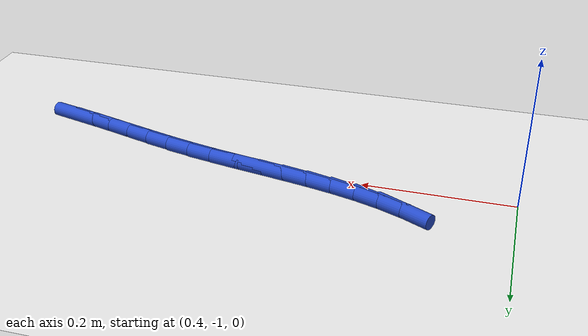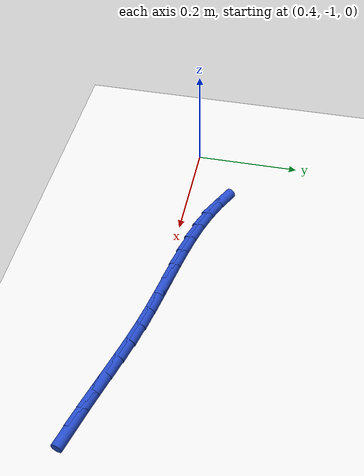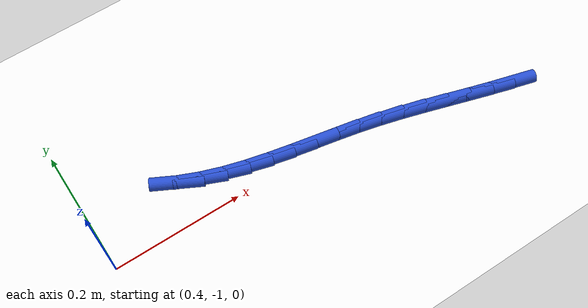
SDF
<sdf version="1.6">
 <world name="default">
  <model name="ground_plane">
   <static>1</static>
   <link name="link">
    <collision name="collision">
     <geometry><plane><normal>0 0 1</normal><size>100 100</size></plane></geometry>
     <surface><friction><ode><mu>100</mu><mu2>50</mu2></ode></friction></surface>
    </collision>
    <visual name="visual">
     <cast_shadows>0</cast_shadows>
     <geometry><plane><normal>0 0 1</normal><size>100 100</size></plane></geometry>
     <material>
      <script><uri>file://media/materials/scripts/gazebo.material</uri><name>Gazebo/WhiteGlow</name></script>
     </material>
    </visual>
   </link>
  </model>
  <model name="line">
   <link name="link_143">
    <pose>1.0415628988538526 -1.0713324934796855 0.01 0 1.57 -0.26797599252402654</pose>
    <collision name="collision">
     <geometry><cylinder><radius>0.01</radius><length>0.08</length></cylinder></geometry>
    </collision>
    <visual name="visual">
     <material>
      <script><name>Gazebo/Blue</name><uri>file://media/materials/scripts/gazebo.material</uri></script>
     </material>
     <geometry><cylinder><radius>0.01</radius><length>0.08</length></cylinder></geometry>
    </visual>
   </link>
   <link name="link_144">
    <pose>1.0079639231768671 -1.0621068761086594 0.01 0 1.57 -0.2857658432693584</pose>
    <collision name="collision">
     <geometry><cylinder><radius>0.01</radius><length>0.08</length></cylinder></geometry>
    </collision>
    <visual name="visual">
     <material>
      <script><name>Gazebo/Blue</name><uri>file://media/materials/scripts/gazebo.material</uri></script>
     </material>
     <geometry><cylinder><radius>0.01</radius><length>0.08</length></cylinder></geometry>
    </visual>
   </link>
   <link name="link_145">
    <pose>0.9743833711785848 -1.0522406624792449 0.01 0 1.57 -0.29352900951507727</pose>
    <collision name="collision">
     <geometry><cylinder><radius>0.01</radius><length>0.08</length></cylinder></geometry>
    </collision>
    <visual name="visual">
     <material>
      <script><name>Gazebo/Blue</name><uri>file://media/materials/scripts/gazebo.material</uri></script>
     </material>
     <geometry><cylinder><radius>0.01</radius><length>0.08</length></cylinder></geometry>
    </visual>
   </link>
   <link name="link_146">
    <pose>0.9407557168235555 -1.0420763635490027 0.01 0 1.57 -0.2913966591738759</pose>
    <collision name="collision">
     <geometry><cylinder><radius>0.01</radius><length>0.08</length></cylinder></geometry>
    </collision>
    <visual name="visual">
     <material>
      <script><name>Gazebo/Blue</name><uri>file://media/materials/scripts/gazebo.material</uri></script>
     </material>
     <geometry><cylinder><radius>0.01</radius><length>0.08</length></cylinder></geometry>
    </visual>
   </link>
   <link name="link_147">
    <pose>0.907015434076332 -1.0319564902754947 0.01 0 1.57 -0.2794428584165104</pose>
    <collision name="collision">
     <geometry><cylinder><radius>0.01</radius><length>0.08</length></cylinder></geometry>
    </collision>
    <visual name="visual">
     <material>
      <script><name>Gazebo/Blue</name><uri>file://media/materials/scripts/gazebo.material</uri></script>
     </material>
     <geometry><cylinder><radius>0.01</radius><length>0.08</length></cylinder></geometry>
    </visual>
   </link>
   <link name="link_148">
    <pose>0.8730969969014652 -1.022223553616282 0.01 0 1.57 -0.2576921133472251</pose>
    <collision name="collision">
     <geometry><cylinder><radius>0.01</radius><length>0.08</length></cylinder></geometry>
    </collision>
    <visual name="visual">
     <material>
      <script><name>Gazebo/Blue</name><uri>file://media/materials/scripts/gazebo.material</uri></script>
     </material>
     <geometry><cylinder><radius>0.01</radius><length>0.08</length></cylinder></geometry>
    </visual>
   </link>
   <link name="link_149">
    <pose>0.8389348792635071 -1.0132200645289264 0.01 0 1.57 -0.22705514648886257</pose>
    <collision name="collision">
     <geometry><cylinder><radius>0.01</radius><length>0.08</length></cylinder></geometry>
    </collision>
    <visual name="visual">
     <material>
      <script><name>Gazebo/Blue</name><uri>file://media/materials/scripts/gazebo.material</uri></script>
     </material>
     <geometry><cylinder><radius>0.01</radius><length>0.08</length></cylinder></geometry>
    </visual>
   </link>
   <link name="link_150">
    <pose>0.8044729654629592 -1.0052580117336374 0.01 0 1.57 -0.20039239360415967</pose>
    <collision name="collision">
     <geometry><cylinder><radius>0.01</radius><length>0.08</length></cylinder></geometry>
    </collision>
    <visual name="visual">
     <material>
      <script><name>Gazebo/Blue</name><uri>file://media/materials/scripts/gazebo.material</uri></script>
     </material>
     <geometry><cylinder><radius>0.01</radius><length>0.08</length></cylinder></geometry>
    </visual>
   </link>
   <link name="link_151">
    <pose>0.7697896259307526 -0.9982131808633813 0.01 0 1.57 -0.18719174678817885</pose>
    <collision name="collision">
     <geometry><cylinder><radius>0.01</radius><length>0.08</length></cylinder></geometry>
    </collision>
    <visual name="visual">
     <material>
      <script><name>Gazebo/Blue</name><uri>file://media/materials/scripts/gazebo.material</uri></script>
     </material>
     <geometry><cylinder><radius>0.01</radius><length>0.08</length></cylinder></geometry>
    </visual>
   </link>
   <link name="link_152">
    <pose>0.7350636185616197 -0.9916357528103931 0.01 0 1.57 -0.1876510327347874</pose>
    <collision name="collision">
     <geometry><cylinder><radius>0.01</radius><length>0.08</length></cylinder></geometry>
    </collision>
    <visual name="visual">
     <material>
      <script><name>Gazebo/Blue</name><uri>file://media/materials/scripts/gazebo.material</uri></script>
     </material>
     <geometry><cylinder><radius>0.01</radius><length>0.08</length></cylinder></geometry>
    </visual>
   </link>
   <link name="link_153">
    <pose>0.7004761085192386 -0.9850681005379902 0.01 0 1.57 -0.20193518981843198</pose>
    <collision name="collision">
     <geometry><cylinder><radius>0.01</radius><length>0.08</length></cylinder></geometry>
    </collision>
    <visual name="visual">
     <material>
      <script><name>Gazebo/Blue</name><uri>file://media/materials/scripts/gazebo.material</uri></script>
     </material>
     <geometry><cylinder><radius>0.01</radius><length>0.08</length></cylinder></geometry>
    </visual>
   </link>
   <link name="link_154">
    <pose>0.666208260967289 -0.97805259700949 0.01 0 1.57 -0.2304114980278386</pose>
    <collision name="collision">
     <geometry><cylinder><radius>0.01</radius><length>0.08</length></cylinder></geometry>
    </collision>
    <visual name="visual">
     <material>
      <script><name>Gazebo/Blue</name><uri>file://media/materials/scripts/gazebo.material</uri></script>
     </material>
     <geometry><cylinder><radius>0.01</radius><length>0.08</length></cylinder></geometry>
    </visual>
   </link>
   <link name="link_155">
    <pose>0.6324412410694507 -0.9701316151882098 0.01 0 1.57 -0.2735770037641017</pose>
    <collision name="collision">
     <geometry><cylinder><radius>0.01</radius><length>0.08</length></cylinder></geometry>
    </collision>
    <visual name="visual">
     <material>
      <script><name>Gazebo/Blue</name><uri>file://media/materials/scripts/gazebo.material</uri></script>
     </material>
     <geometry><cylinder><radius>0.01</radius><length>0.08</length></cylinder></geometry>
    </visual>
   </link>
   <link name="link_156">
    <pose>0.5993562139894029 -0.9608475280374674 0.01 0 1.57 -0.33188832645579913</pose>
    <collision name="collision">
     <geometry><cylinder><radius>0.01</radius><length>0.08</length></cylinder></geometry>
    </collision>
    <visual name="visual">
     <material>
      <script><name>Gazebo/Blue</name><uri>file://media/materials/scripts/gazebo.material</uri></script>
     </material>
     <geometry><cylinder><radius>0.01</radius><length>0.08</length></cylinder></geometry>
    </visual>
   </link>
   <link name="link_157">
    <pose>0.5671343448908249 -0.9497427085205801 0.01 0 1.57 -0.4044568643022263</pose>
    <collision name="collision">
     <geometry><cylinder><radius>0.01</radius><length>0.08</length></cylinder></geometry>
    </collision>
    <visual name="visual">
     <material>
      <script><name>Gazebo/Blue</name><uri>file://media/materials/scripts/gazebo.material</uri></script>
     </material>
     <geometry><cylinder><radius>0.01</radius><length>0.08</length></cylinder></geometry>
    </visual>
   </link>
   <link name="link_158">
    <pose>0.5359453081168678 -0.936392031774529 0.01 0 1.57 -0.4793877273643753</pose>
    <collision name="collision">
     <geometry><cylinder><radius>0.01</radius><length>0.08</length></cylinder></geometry>
    </collision>
    <visual name="visual">
     <material>
      <script><name>Gazebo/Blue</name><uri>file://media/materials/scripts/gazebo.material</uri></script>
     </material>
     <geometry><cylinder><radius>0.01</radius><length>0.08</length></cylinder></geometry>
    </visual>
   </link>
  </model>
 </world>
</sdf>
